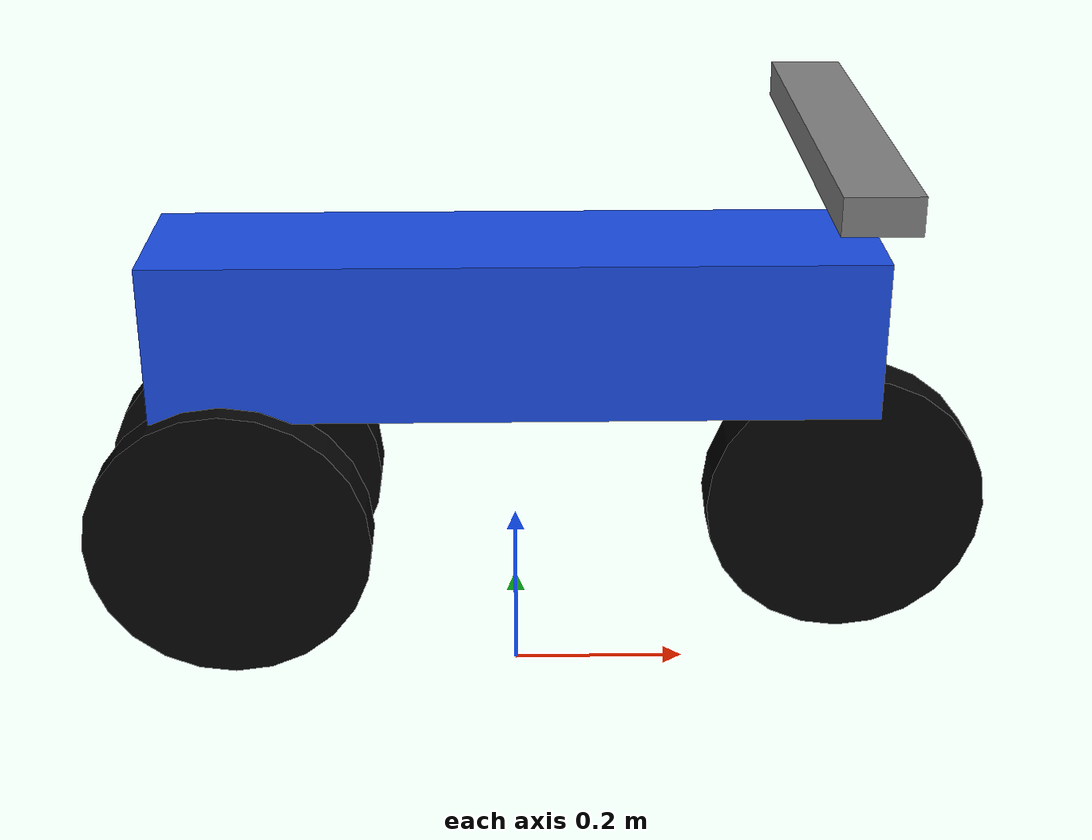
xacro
<?xml version="1.0"?>
<robot name="simple_motorcycle" xmlns:xacro="http://www.ros.org/wiki/xacro">

  <material name="blue">
    <color rgba="0.1 0.3 0.9 1.0"/>
  </material>

  <material name="black">
    <color rgba="0.02 0.02 0.02 1.0"/>
  </material>

  <material name="gray">
    <color rgba="0.5 0.5 0.5 1.0"/>
  </material>

  <link name="base_link">
    <visual>
      <origin xyz="0 0 0.45"/>
      <geometry>
        <box size="0.8 0.18 0.18"/>
      </geometry>
      <material name="blue"/>
    </visual>
  </link>

  <link name="front_wheel">
    <visual>
      <origin rpy="1.5708 0 0"/>
      <geometry>
        <cylinder radius="0.16" length="0.06"/>
      </geometry>
      <material name="black"/>
    </visual>
  </link>

  <joint name="front_wheel_joint" type="fixed">
    <parent link="base_link"/>
    <child link="front_wheel"/>
    <origin xyz="0.38 0 0.22"/>
  </joint>

  <link name="left_rear_wheel">
    <visual>
      <origin rpy="1.5708 0 0"/>
      <geometry>
        <cylinder radius="0.16" length="0.05"/>
      </geometry>
      <material name="black"/>
    </visual>
  </link>

  <joint name="left_rear_wheel_joint" type="fixed">
    <parent link="base_link"/>
    <child link="left_rear_wheel"/>
    <origin xyz="-0.32 0.09 0.22"/>
  </joint>

  <link name="right_rear_wheel">
    <visual>
      <origin rpy="1.5708 0 0"/>
      <geometry>
        <cylinder radius="0.16" length="0.05"/>
      </geometry>
      <material name="black"/>
    </visual>
  </link>

  <joint name="right_rear_wheel_joint" type="fixed">
    <parent link="base_link"/>
    <child link="right_rear_wheel"/>
    <origin xyz="-0.32 -0.09 0.22"/>
  </joint>

  <link name="handle">
    <visual>
      <origin xyz="0.35 0 0.65"/>
      <geometry>
        <box size="0.08 0.5 0.04"/>
      </geometry>
      <material name="gray"/>
    </visual>
  </link>

  <joint name="handle_joint" type="fixed">
    <parent link="base_link"/>
    <child link="handle"/>
    <origin xyz="0 0 0"/>
  </joint>

</robot>
